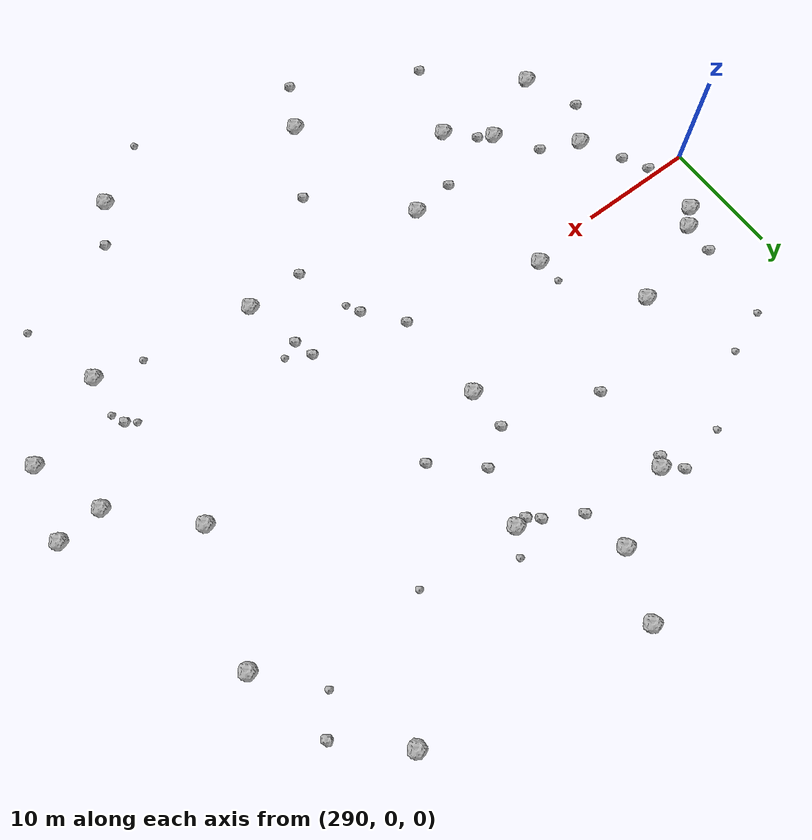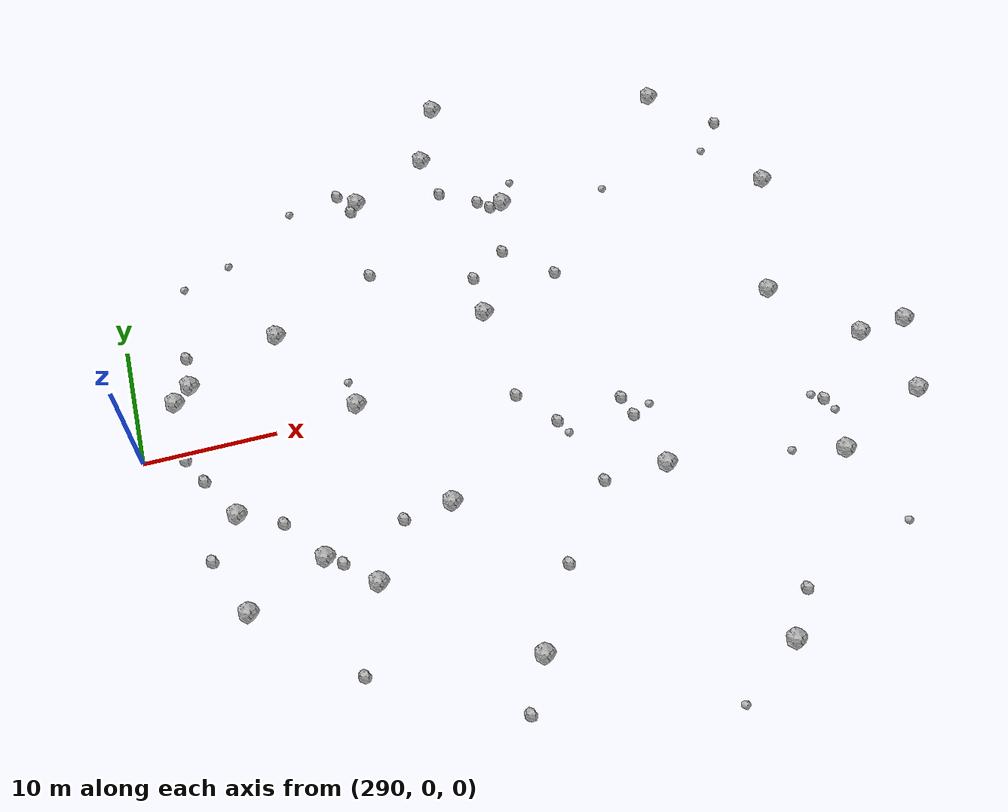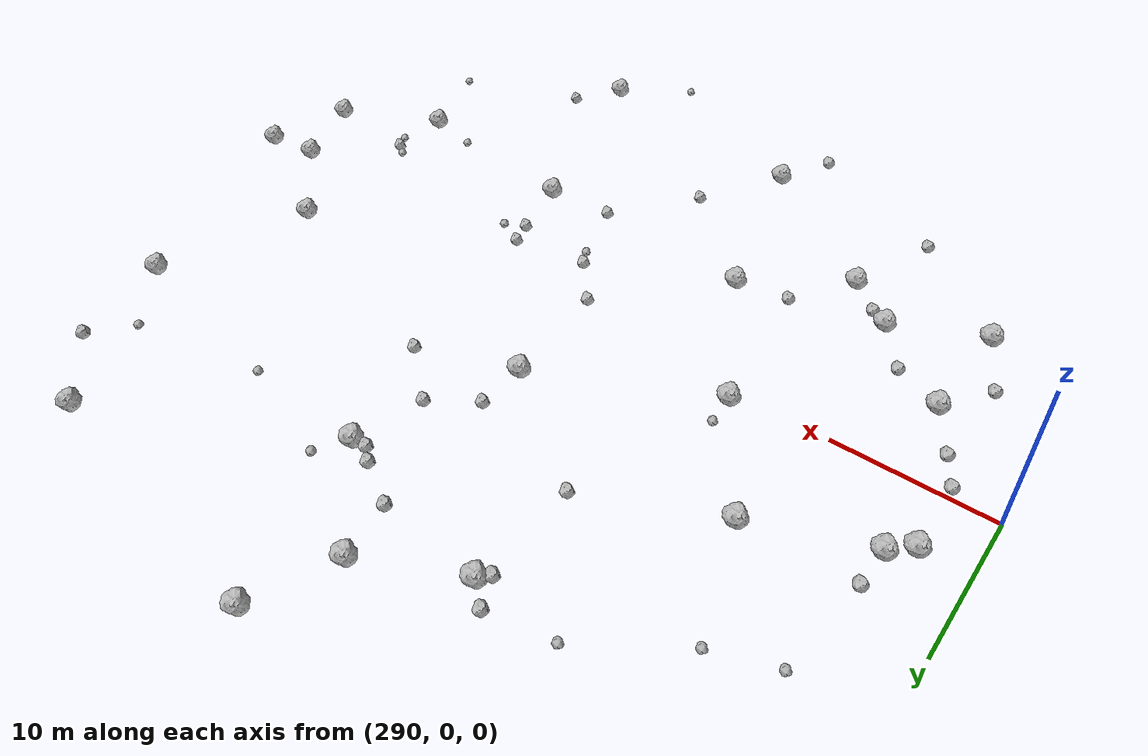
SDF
<sdf version="1.6">
 <world name="default">
  <include><uri>model://sun</uri></include>
  <model name="rock1_8_3">
   <include><uri>model://rock1</uri><pose>295.69960410525306 -13.845768533473954 0.5 0 0 0</pose></include>
  </model>
  <model name="rock1_8_4">
   <include><uri>model://rock1</uri><pose>343.36140675746276 13.398574533892301 0.5 0 0 0</pose></include>
  </model>
  <model name="rock1_8_5">
   <include><uri>model://rock1</uri><pose>327.3662940811939 -10.098769107103251 0.5 0 0 0</pose></include>
  </model>
  <model name="rock1_8_6">
   <include><uri>model://rock1</uri><pose>316.25552419312476 22.694923862851894 0.5 0 0 0</pose></include>
  </model>
  <model name="rock1_8_7">
   <include><uri>model://rock1</uri><pose>317.6154070664119 6.3627341330197495 0.5 0 0 0</pose></include>
  </model>
  <model name="rock1_8_8">
   <include><uri>model://rock1</uri><pose>331.6493552719042 -25.41391312904971 0.5 0 0 0</pose></include>
  </model>
  <model name="rock1_8_9">
   <include><uri>model://rock1</uri><pose>340.53465041662844 -12.357455808181971 0.5 0 0 0</pose></include>
  </model>
  <model name="rock1_8_10">
   <include><uri>model://rock1</uri><pose>339.95032010503394 2.7093315883019855 0.5 0 0 0</pose></include>
  </model>
  <model name="rock1_8_11">
   <include><uri>model://rock1</uri><pose>296.11238895710056 -6.148712770242177 0.5 0 0 0</pose></include>
  </model>
  <model name="rock1_8_12">
   <include><uri>model://rock1</uri><pose>349.2914369277491 -2.6709960203884258 0.5 0 0 0</pose></include>
  </model>
  <model name="rock1_8_13">
   <include><uri>model://rock1</uri><pose>336.9818714940269 24.666399323197425 0.5 0 0 0</pose></include>
  </model>
  <model name="rock1_8_14">
   <include><uri>model://rock1</uri><pose>321.7097874522235 16.631021424696527 0.5 0 0 0</pose></include>
  </model>
  <model name="rock1_8_15">
   <include><uri>model://rock1</uri><pose>301.62898684973504 -11.073270123441013 0.5 0 0 0</pose></include>
  </model>
  <model name="rock1_8_16">
   <include><uri>model://rock1</uri><pose>318.425299726173 28.020323222801423 0.5 0 0 0</pose></include>
  </model>
  <model name="rock1_8_17">
   <include><uri>model://rock1</uri><pose>304.8963784739044 -13.91232897512435 0.5 0 0 0</pose></include>
  </model>
  <model name="rock1_8_18">
   <include><uri>model://rock1</uri><pose>301.43952764009464 8.391557367933572 0.5 0 0 0</pose></include>
  </model>
  <model name="rock1_8_19">
   <include><uri>model://rock1</uri><pose>347.77379073540544 -8.880810211433566 0.5 0 0 0</pose></include>
  </model>
  <model name="rock1_8_20">
   <include><uri>model://rock1</uri><pose>293.0139234115165 4.322761519509115 0.5 0 0 0</pose></include>
  </model>
  <model name="rock1_8_21">
   <include><uri>model://rock1</uri><pose>306.2526521511582 0.6954425107790776 0.5 0 0 0</pose></include>
  </model>
  <model name="rock1_8_22">
   <include><uri>model://rock1</uri><pose>311.34541592706756 -9.116402598210193 0.5 0 0 0</pose></include>
  </model>
  <model name="rock1_8_23">
   <include><uri>model://rock1</uri><pose>294.310466621204 5.5311089224801435 0.5 0 0 0</pose></include>
  </model>
  <model name="rock1_8_24">
   <include><uri>model://rock1</uri><pose>314.72637646208193 -22.011017693445098 0.5 0 0 0</pose></include>
  </model>
  <model name="rock1_8_25">
   <include><uri>model://rock1</uri><pose>345.49732960900934 -2.975404790873174 0.5 0 0 0</pose></include>
  </model>
  <model name="rock1_8_26">
   <include><uri>model://rock1</uri><pose>310.07943069420975 19.655098348602642 0.5 0 0 0</pose></include>
  </model>
  <model name="rock2_8_0">
   <include><uri>model://rock2</uri><pose>299.21653333365515 -7.634425149325423 0.3 0 0 0</pose></include>
  </model>
  <model name="rock2_8_1">
   <include><uri>model://rock2</uri><pose>319.7481962580141 17.32501546445271 0.3 0 0 0</pose></include>
  </model>
  <model name="rock2_8_2">
   <include><uri>model://rock2</uri><pose>309.425814953404 18.997750861359528 0.3 0 0 0</pose></include>
  </model>
  <model name="rock2_8_3">
   <include><uri>model://rock2</uri><pose>317.58804327096976 9.865699802977396 0.3 0 0 0</pose></include>
  </model>
  <model name="rock2_8_4">
   <include><uri>model://rock2</uri><pose>293.8002453277129 -9.273924923464548 0.3 0 0 0</pose></include>
  </model>
  <model name="rock2_8_5">
   <include><uri>model://rock2</uri><pose>318.14799909275143 -15.916111988474919 0.3 0 0 0</pose></include>
  </model>
  <model name="rock2_8_6">
   <include><uri>model://rock2</uri><pose>324.0053467312934 8.749149789214918 0.3 0 0 0</pose></include>
  </model>
  <model name="rock2_8_7">
   <include><uri>model://rock2</uri><pose>333.745290070932 -22.021334551867827 0.3 0 0 0</pose></include>
  </model>
  <model name="rock2_8_8">
   <include><uri>model://rock2</uri><pose>340.52675619756695 -7.831739702752401 0.3 0 0 0</pose></include>
  </model>
  <model name="rock2_8_9">
   <include><uri>model://rock2</uri><pose>293.07233311842066 -0.630068998896828 0.3 0 0 0</pose></include>
  </model>
  <model name="rock2_8_10">
   <include><uri>model://rock2</uri><pose>325.7170058193747 -3.757145251291373 0.3 0 0 0</pose></include>
  </model>
  <model name="rock2_8_11">
   <include><uri>model://rock2</uri><pose>312.6574474994068 -25.810484082834627 0.3 0 0 0</pose></include>
  </model>
  <model name="rock2_8_12">
   <include><uri>model://rock2</uri><pose>294.36418418158223 8.217225772549412 0.3 0 0 0</pose></include>
  </model>
  <model name="rock2_8_13">
   <include><uri>model://rock2</uri><pose>320.5150211042588 -4.496337978551491 0.3 0 0 0</pose></include>
  </model>
  <model name="rock2_8_14">
   <include><uri>model://rock2</uri><pose>307.62744082101375 -9.532713057476826 0.3 0 0 0</pose></include>
  </model>
  <model name="rock2_8_15">
   <include><uri>model://rock2</uri><pose>318.07150868091423 -1.5176208182369173 0.3 0 0 0</pose></include>
  </model>
  <model name="rock2_8_16">
   <include><uri>model://rock2</uri><pose>320.62386653329276 16.558198384359898 0.3 0 0 0</pose></include>
  </model>
  <model name="rock2_8_17">
   <include><uri>model://rock2</uri><pose>302.73151069187213 -11.78829245210651 0.3 0 0 0</pose></include>
  </model>
  <model name="rock2_8_18">
   <include><uri>model://rock2</uri><pose>341.553834921695 20.47602408158565 0.3 0 0 0</pose></include>
  </model>
  <model name="rock2_8_19">
   <include><uri>model://rock2</uri><pose>320.47630484225436 11.876287235320333 0.3 0 0 0</pose></include>
  </model>
  <model name="rock2_8_20">
   <include><uri>model://rock2</uri><pose>316.90339414211724 18.98102304184996 0.3 0 0 0</pose></include>
  </model>
  <model name="rock2_8_21">
   <include><uri>model://rock2</uri><pose>294.17953986344855 -2.755558082468042 0.3 0 0 0</pose></include>
  </model>
  <model name="rock2_8_22">
   <include><uri>model://rock2</uri><pose>326.2022556104597 -5.450305309320186 0.3 0 0 0</pose></include>
  </model>
  <model name="rock2_8_23">
   <include><uri>model://rock2</uri><pose>302.50987553887336 -20.352794792024532 0.3 0 0 0</pose></include>
  </model>
  <model name="rock2_8_24">
   <include><uri>model://rock2</uri><pose>309.62474847013317 12.307079408695067 0.3 0 0 0</pose></include>
  </model>
  <model name="rock2_8_25">
   <include><uri>model://rock2</uri><pose>308.6258733297226 20.887129762948227 0.3 0 0 0</pose></include>
  </model>
  <model name="rock2_8_26">
   <include><uri>model://rock2</uri><pose>322.4807006472668 -10.220781784901583 0.3 0 0 0</pose></include>
  </model>
  <model name="rock3_8_0">
   <include><uri>model://rock3</uri><pose>321.0872025191698 -5.692007332733425 0.2 0 0 0</pose></include>
  </model>
  <model name="rock3_8_1">
   <include><uri>model://rock3</uri><pose>336.6282116889304 -11.42711738884011 0.2 0 0 0</pose></include>
  </model>
  <model name="rock3_8_2">
   <include><uri>model://rock3</uri><pose>341.02302593439754 -8.951132211016027 0.2 0 0 0</pose></include>
  </model>
  <model name="rock3_8_3">
   <include><uri>model://rock3</uri><pose>339.722576270575 -7.274021786114737 0.2 0 0 0</pose></include>
  </model>
  <model name="rock3_8_4">
   <include><uri>model://rock3</uri><pose>330.1694161332689 16.02888692956359 0.2 0 0 0</pose></include>
  </model>
  <model name="rock3_8_5">
   <include><uri>model://rock3</uri><pose>305.99802110520807 2.8685948450652248 0.2 0 0 0</pose></include>
  </model>
  <model name="rock3_8_6">
   <include><uri>model://rock3</uri><pose>298.8327416844985 16.069849473123348 0.2 0 0 0</pose></include>
  </model>
  <model name="rock3_8_7">
   <include><uri>model://rock3</uri><pose>322.8570920113539 18.627123462424613 0.2 0 0 0</pose></include>
  </model>
  <model name="rock3_8_8">
   <include><uri>model://rock3</uri><pose>304.48042602101856 20.01890455170934 0.2 0 0 0</pose></include>
  </model>
  <model name="rock3_8_9">
   <include><uri>model://rock3</uri><pose>295.0906803936099 14.69882588241046 0.2 0 0 0</pose></include>
  </model>
  <model name="rock3_8_10">
   <include><uri>model://rock3</uri><pose>342.75303808104456 -18.972905953916623 0.2 0 0 0</pose></include>
  </model>
  <model name="rock3_8_11">
   <include><uri>model://rock3</uri><pose>326.73798586256925 -28.87705393940155 0.2 0 0 0</pose></include>
  </model>
  <model name="rock3_8_12">
   <include><uri>model://rock3</uri><pose>339.4581023166973 17.788103260141753 0.2 0 0 0</pose></include>
  </model>
  <model name="rock3_8_13">
   <include><uri>model://rock3</uri><pose>327.6346201150629 -4.847142327684917 0.2 0 0 0</pose></include>
  </model>
 </world>
</sdf>
